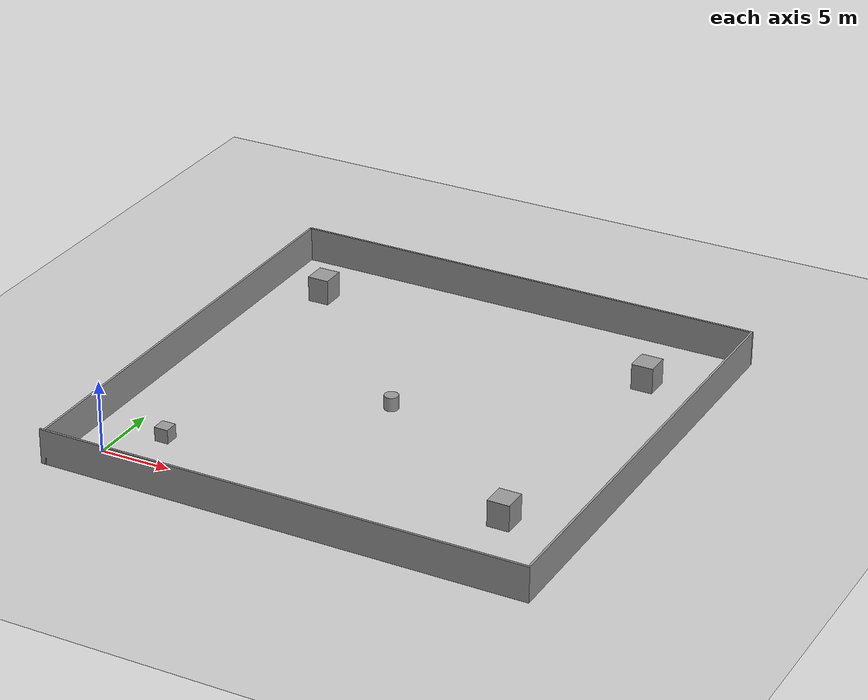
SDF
<sdf version="1.6">
 <world name="default">
  <light name="sun" type="directional">
   <pose>0 0 10 0 -0 0</pose>
   <diffuse>0.8 0.8 0.8 1</diffuse>
   <specular>0.2 0.2 0.2 1</specular>
   <attenuation>
    <range>1000</range>
    <constant>0.9</constant>
    <linear>0.01</linear>
    <quadratic>0.001</quadratic>
   </attenuation>
   <direction>-0.5 0.1 -0.9</direction>
  </light>
  <model name="ground_plane">
   <static>1</static>
   <link name="link">
    <collision name="collision">
     <geometry><plane><normal>0 0 1</normal><size>100 100</size></plane></geometry>
     <surface>
      <contact><collide_bitmask>65535</collide_bitmask></contact>
      <friction><ode><mu>100</mu><mu2>50</mu2></ode></friction>
     </surface>
    </collision>
    <visual name="visual">
     <cast_shadows>0</cast_shadows>
     <geometry><plane><normal>0 0 1</normal><size>100 100</size></plane></geometry>
     <material>
      <script><uri>file://media/materials/scripts/gazebo.material</uri><name>Gazebo/Grey</name></script>
     </material>
    </visual>
   </link>
  </model>
  <gravity>0 0 -9.8</gravity>
  <magnetic_field>6e-06 2.3e-05 -4.2e-05</magnetic_field>
  <atmosphere type="adiabatic"/>
  <physics name="default_physics" default="0" type="ode">
   <max_step_size>0.001</max_step_size>
   <real_time_factor>1</real_time_factor>
   <real_time_update_rate>1000</real_time_update_rate>
  </physics>
  <scene><ambient>0.4 0.4 0.4 1</ambient><background>0.7 0.7 0.7 1</background><shadows>1</shadows></scene>
  <spherical_coordinates>
   <surface_model>EARTH_WGS84</surface_model>
   <latitude_deg>0</latitude_deg>
   <longitude_deg>0</longitude_deg>
   <elevation>0</elevation>
   <heading_deg>0</heading_deg>
  </spherical_coordinates>
  <model name="ped_wall">
   <pose>14.8129 13.805 0 0 -0 0</pose>
   <link name="Wall_29">
    <collision name="Wall_29_Collision">
     <geometry><box><size>34.75 0.15 2.5</size></box></geometry>
     <pose>0 0 1.25 0 -0 0</pose>
    </collision>
    <visual name="Wall_29_Visual">
     <pose>0 0 1.25 0 -0 0</pose>
     <geometry><box><size>34.75 0.15 2.5</size></box></geometry>
     <material>
      <script><uri>file://media/materials/scripts/gazebo.material</uri><name>Gazebo/Grey</name></script>
      <ambient>1 1 1 1</ambient>
     </material>
     <meta><layer>0</layer></meta>
    </visual>
    <pose>0 -16.925 0 0 -0 0</pose>
   </link>
   <link name="Wall_30">
    <collision name="Wall_30_Collision">
     <geometry><box><size>34 0.15 2.5</size></box></geometry>
     <pose>0 0 1.25 0 -0 0</pose>
    </collision>
    <visual name="Wall_30_Visual">
     <pose>0 0 1.25 0 -0 0</pose>
     <geometry><box><size>34 0.15 2.5</size></box></geometry>
     <material>
      <script><uri>file://media/materials/scripts/gazebo.material</uri><name>Gazebo/Grey</name></script>
      <ambient>1 1 1 1</ambient>
     </material>
     <meta><layer>0</layer></meta>
    </visual>
    <pose>17.3 0 0 0 -0 1.5708</pose>
   </link>
   <link name="Wall_31">
    <collision name="Wall_31_Collision">
     <geometry><box><size>34.5 0.15 2.5</size></box></geometry>
     <pose>0 0 1.25 0 -0 0</pose>
    </collision>
    <visual name="Wall_31_Visual">
     <pose>0 0 1.25 0 -0 0</pose>
     <geometry><box><size>34.5 0.15 2.5</size></box></geometry>
     <material>
      <script><uri>file://media/materials/scripts/gazebo.material</uri><name>Gazebo/Grey</name></script>
      <ambient>1 1 1 1</ambient>
     </material>
     <meta><layer>0</layer></meta>
    </visual>
    <pose>0.125 16.925 0 0 -0 3.14159</pose>
   </link>
   <link name="Wall_32">
    <collision name="Wall_32_Collision">
     <geometry><box><size>34 0.15 2.5</size></box></geometry>
     <pose>0 0 1.25 0 -0 0</pose>
    </collision>
    <visual name="Wall_32_Visual">
     <pose>0 0 1.25 0 -0 0</pose>
     <geometry><box><size>34 0.15 2.5</size></box></geometry>
     <material>
      <script><uri>file://media/materials/scripts/gazebo.material</uri><name>Gazebo/Grey</name></script>
      <ambient>1 1 1 1</ambient>
     </material>
     <meta><layer>0</layer></meta>
    </visual>
    <pose>-17.05 0 0 0 -0 -1.5708</pose>
   </link>
   <static>1</static>
  </model>
  <model name="unit_box">
   <pose>2.73392 3.2193 0.499995 0 1e-05 0</pose>
   <link name="link">
    <inertial>
     <mass>1</mass>
     <inertia>
      <ixx>0.166667</ixx>
      <ixy>0</ixy>
      <ixz>0</ixz>
      <iyy>0.166667</iyy>
      <iyz>0</iyz>
      <izz>0.166667</izz>
     </inertia>
    </inertial>
    <collision name="collision"><geometry><box><size>1 0.999995 0.999998</size></box></geometry></collision>
    <visual name="visual">
     <geometry><box><size>1 0.999995 0.999998</size></box></geometry>
     <material>
      <script><name>Gazebo/Grey</name><uri>file://media/materials/scripts/gazebo.material</uri></script>
     </material>
    </visual>
   </link>
  </model>
  <model name="unit_cylinder">
   <pose>13.635 13.812 0.499993 -3e-06 -3e-06 0</pose>
   <link name="link">
    <inertial>
     <mass>1</mass>
     <inertia><ixx>0.145833</ixx><ixy>0</ixy><ixz>0</ixz><iyy>0.145833</iyy><iyz>0</iyz><izz>0.125</izz></inertia>
    </inertial>
    <collision name="collision">
     <geometry><cylinder><radius>0.499999</radius><length>1</length></cylinder></geometry>
    </collision>
    <visual name="visual">
     <geometry><cylinder><radius>0.499999</radius><length>1</length></cylinder></geometry>
     <material>
      <script><name>Gazebo/Grey</name><uri>file://media/materials/scripts/gazebo.material</uri></script>
     </material>
    </visual>
   </link>
  </model>
  <model name="unit_box_clone">
   <pose>1.64761 25.786 0.499995 0 -1e-05 0</pose>
   <link name="link">
    <inertial>
     <mass>1</mass>
     <inertia>
      <ixx>0.166667</ixx>
      <ixy>0</ixy>
      <ixz>0</ixz>
      <iyy>0.166667</iyy>
      <iyz>0</iyz>
      <izz>0.166667</izz>
     </inertia>
    </inertial>
    <collision name="collision"><geometry><box><size>1.55775 1.68323 2.61705</size></box></geometry></collision>
    <visual name="visual">
     <geometry><box><size>1.55775 1.68323 2.61705</size></box></geometry>
     <material>
      <script><name>Gazebo/Grey</name><uri>file://media/materials/scripts/gazebo.material</uri></script>
     </material>
    </visual>
   </link>
  </model>
  <model name="unit_box_clone_0">
   <pose>27.1529 24.7069 0.499995 0 -1e-05 0</pose>
   <link name="link">
    <inertial>
     <mass>1</mass>
     <inertia>
      <ixx>0.166667</ixx>
      <ixy>0</ixy>
      <ixz>0</ixz>
      <iyy>0.166667</iyy>
      <iyz>0</iyz>
      <izz>0.166667</izz>
     </inertia>
    </inertial>
    <collision name="collision"><geometry><box><size>1.55775 1.68323 2.61705</size></box></geometry></collision>
    <visual name="visual">
     <geometry><box><size>1.55775 1.68323 2.61705</size></box></geometry>
     <material>
      <script><name>Gazebo/Grey</name><uri>file://media/materials/scripts/gazebo.material</uri></script>
     </material>
    </visual>
   </link>
  </model>
  <model name="unit_box_clone_1">
   <pose>26.7278 4.35248 0.499995 0 -1e-05 0</pose>
   <link name="link">
    <inertial>
     <mass>1</mass>
     <inertia>
      <ixx>0.166667</ixx>
      <ixy>0</ixy>
      <ixz>0</ixz>
      <iyy>0.166667</iyy>
      <iyz>0</iyz>
      <izz>0.166667</izz>
     </inertia>
    </inertial>
    <collision name="collision"><geometry><box><size>1.55775 1.68323 2.61705</size></box></geometry></collision>
    <visual name="visual">
     <geometry><box><size>1.55775 1.68323 2.61705</size></box></geometry>
     <material>
      <script><name>Gazebo/Grey</name><uri>file://media/materials/scripts/gazebo.material</uri></script>
     </material>
    </visual>
   </link>
  </model>
 </world>
</sdf>
